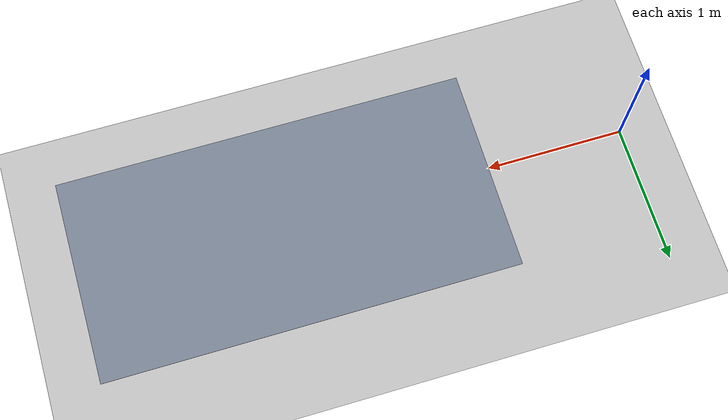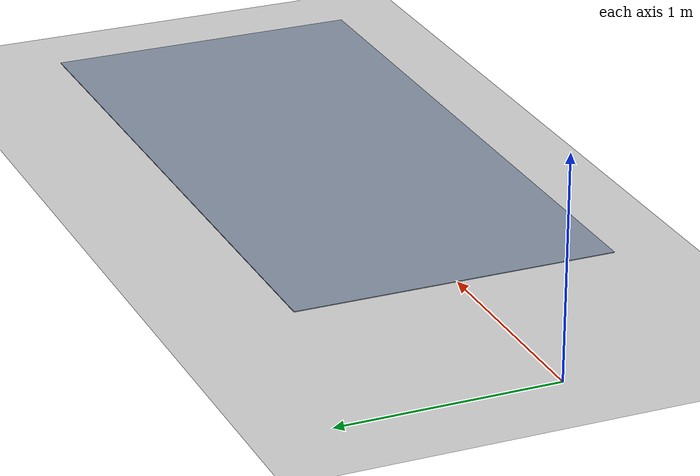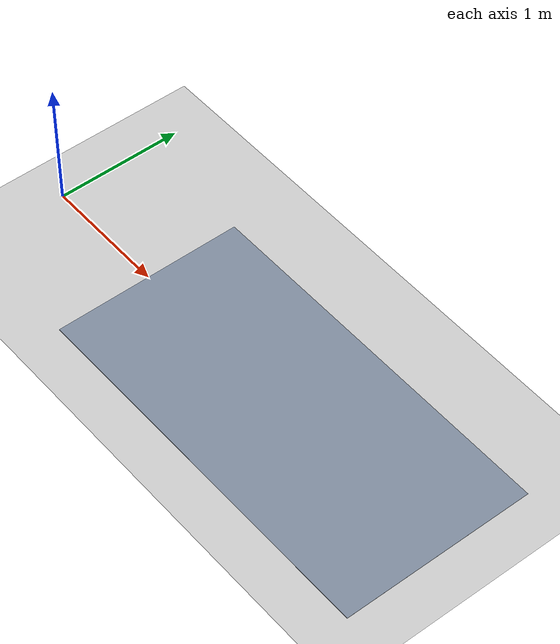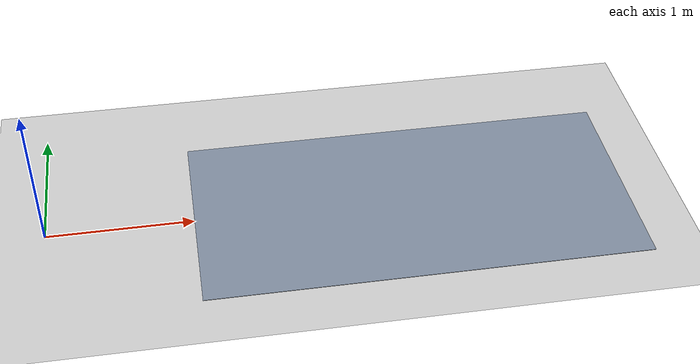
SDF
<?xml version="1.0"?>
<sdf version="1.6">
  <world name="low_friction_mu_020">
    <gravity>0 0 -9.81</gravity>
    <physics name="default_physics" default="0" type="ode">
      <max_step_size>0.001</max_step_size>
      <real_time_update_rate>1000</real_time_update_rate>
      <ode>
        <solver><type>quick</type><iters>100</iters><sor>1.3</sor><use_dynamic_moi_rescaling>true</use_dynamic_moi_rescaling></solver>
        <constraints><cfm>0.0</cfm><erp>0.2</erp><contact_max_correcting_vel>0.1</contact_max_correcting_vel><contact_surface_layer>0.001</contact_surface_layer></constraints>
      </ode>
    </physics>
    <include><uri>model://ground_plane</uri></include>
    <include><uri>model://sun</uri></include>
    <model name="low_friction_patch">
      <static>true</static><pose>2.5 0.0 0.002 0 0 0</pose>
      <link name="link">
        <collision name="collision">
          <geometry><box><size>3.0 1.50 0.004</size></box></geometry>
          <surface><friction><ode><mu>0.20</mu><mu2>0.20</mu2></ode></friction></surface>
        </collision>
        <visual name="visual"><geometry><box><size>3.0 1.50 0.004</size></box></geometry><material><ambient>0.50 0.55 0.62 1</ambient><specular>0.8 0.8 0.8 1</specular></material></visual>
      </link>
    </model>
  </world>
</sdf>
